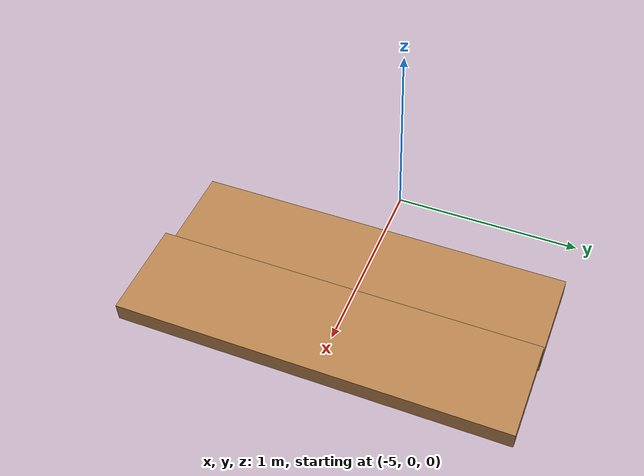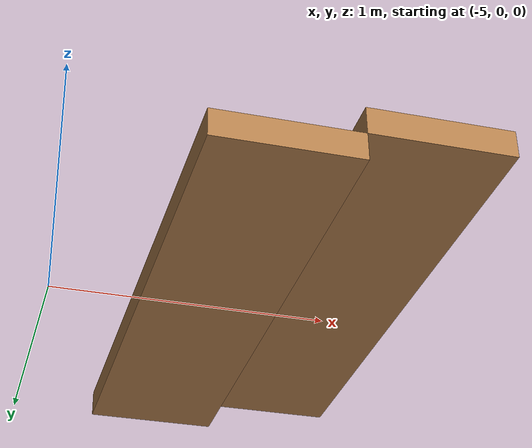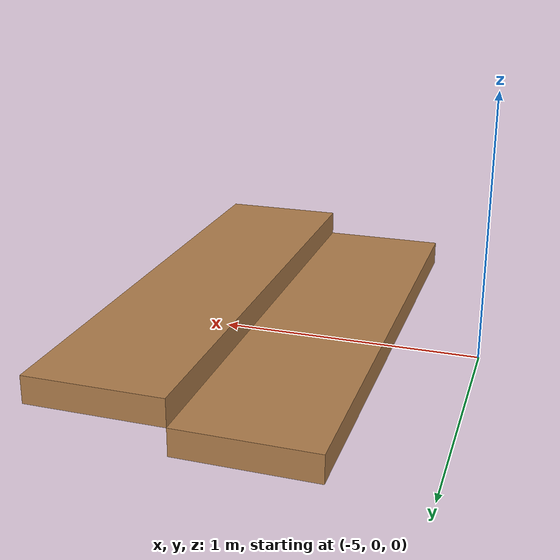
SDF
<?xml version='1.0'?>
<sdf version='1.6'>
  <model name='stairs'>
    <pose frame=''>-3.8 0.009 0 0 -0 0</pose>
    <link name='Stairs_1'>
      <visual name='Stairs_1_Visual_0'>
        <pose frame=''>-0.625 -0 0.05 0 -0 1.5708</pose>
        <geometry>
          <box>
            <size>2 0.50 0.1</size>
          </box>
        </geometry>
        <material>
          <script>
            <uri>file://media/materials/scripts/gazebo.material</uri>
            <name>Gazebo/Wood</name>
          </script>
          <ambient>1 1 1 1</ambient>
        </material>
        <meta>
          <layer>0</layer>
        </meta>
      </visual>
      <collision name='Stairs_1_Collision_0'>
        <geometry>
          <box>
            <size>2 0.50 0.1</size>
          </box>
        </geometry>
                <surface>
            <friction>
            <ode>
                <mu>100000</mu>
                <mu2>5000</mu2>
            </ode>
            </friction>
            <bounce/>
            <contact>
            <ode/>
            </contact>
        </surface>
        <pose frame=''>-0.625 -0 0.05 0 -0 1.5708</pose>
      </collision>
      <visual name='Stairs_1_Visual_1'>
        <pose frame=''>-0.125 -0 0.15 0 -0 1.5708</pose>
        <geometry>
          <box>
            <size>2 0.50 0.1</size>
          </box>
        </geometry>
        <material>
          <script>
            <uri>file://media/materials/scripts/gazebo.material</uri>
            <name>Gazebo/WoodPallet </name>
          </script>
          <ambient>1 1 1 1</ambient>
        </material>
        <meta>
          <layer>0</layer>
        </meta>
      </visual>
      <collision name='Stairs_1_Collision_1'>
        <geometry>
          <box>
            <size>2 0.50 0.1</size>
          </box>
        </geometry>
                        <surface>
            <friction>
            <ode>
                <mu>100000</mu>
                <mu2>5000</mu2>
            </ode>
            </friction>
            <bounce/>
            <contact>
            <ode/>
            </contact>
        </surface>
        <pose frame=''>-0.125 -0 0.15 0 -0 1.5708</pose>
      </collision>
    </link>
    <static>1</static>
  </model>
</sdf>
